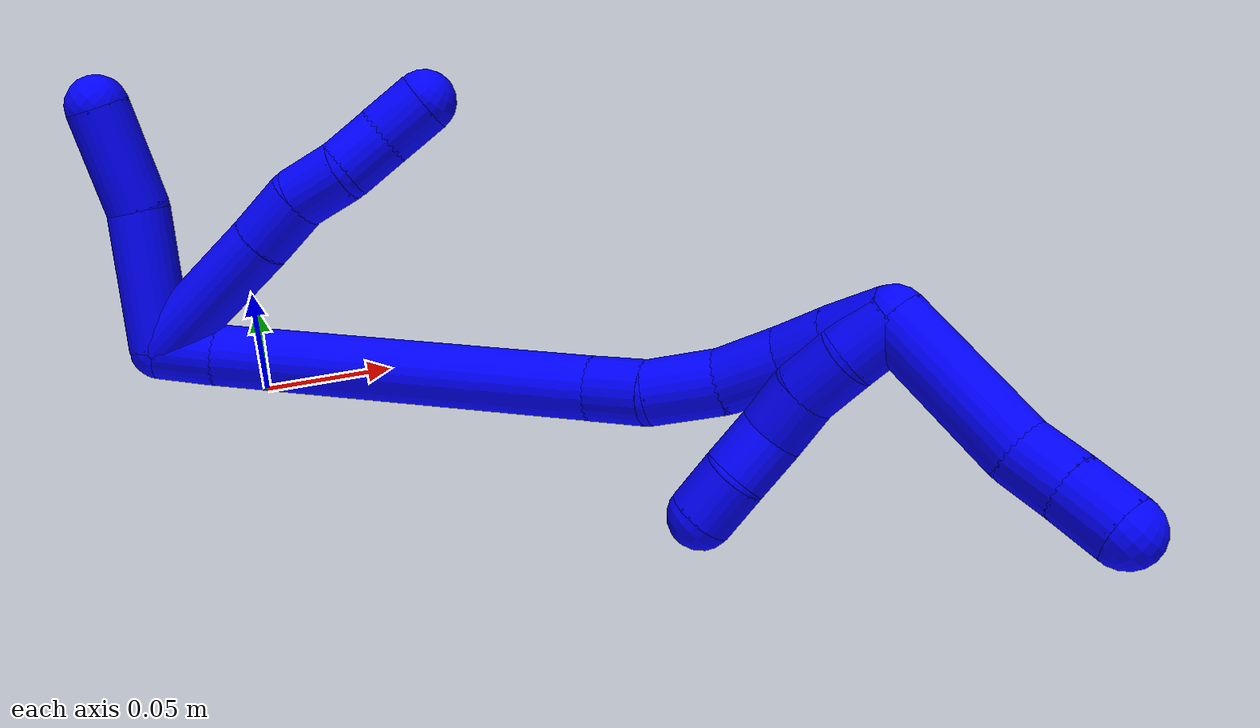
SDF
<sdf version="1.7">
 <world name="default">
  <model name="1">
   <static>0</static>
   <link name="1">
    <collision name="collision-cylinder-e_1_2_8">
     <pose>0.001427 0.000974 -0.031741 -3.11091 0.0449 -1.94286</pose>
     <geometry><cylinder><radius>0.0125</radius><length>0.063577</length></cylinder></geometry>
     <surface>
      <friction><ode><mu>1.16</mu><mu2>1.16</mu2><slip1>0</slip1><slip2>0</slip2></ode></friction>
      <contact><ode><kp>1e+06</kp><kd>1</kd><max_vel>0</max_vel><min_depth>0.001</min_depth></ode></contact>
     </surface>
    </collision>
    <visual name="visual-cylinder-e_1_2_8">
     <pose>0.001427 0.000974 -0.031741 -3.11091 0.0449 -1.94286</pose>
     <geometry><cylinder><radius>0.0125</radius><length>0.063577</length></cylinder></geometry>
     <material><ambient>0 0 1 1</ambient></material>
    </visual>
    <collision name="collision-cylinder-e_2_8_9">
     <pose>0.002942 0.002172 -0.075302 -3.12266 0.007431 -0.747946</pose>
     <geometry><cylinder><radius>0.0125</radius><length>0.023643</length></cylinder></geometry>
     <surface>
      <friction><ode><mu>1.16</mu><mu2>1.16</mu2><slip1>0</slip1><slip2>0</slip2></ode></friction>
      <contact><ode><kp>1e+06</kp><kd>1</kd><max_vel>0</max_vel><min_depth>0.001</min_depth></ode></contact>
     </surface>
    </collision>
    <visual name="visual-cylinder-e_2_8_9">
     <pose>0.002942 0.002172 -0.075302 -3.12266 0.007431 -0.747946</pose>
     <geometry><cylinder><radius>0.0125</radius><length>0.023643</length></cylinder></geometry>
     <material><ambient>0 0 1 1</ambient></material>
    </visual>
    <collision name="collision-cylinder-e_3_9_10">
     <pose>0.006066 0.003208 -0.097578 -3.06405 0.281782 -2.60768</pose>
     <geometry><cylinder><radius>0.0125</radius><length>0.021839</length></cylinder></geometry>
     <surface>
      <friction><ode><mu>1.16</mu><mu2>1.16</mu2><slip1>0</slip1><slip2>0</slip2></ode></friction>
      <contact><ode><kp>1e+06</kp><kd>1</kd><max_vel>0</max_vel><min_depth>0.001</min_depth></ode></contact>
     </surface>
    </collision>
    <visual name="visual-cylinder-e_3_9_10">
     <pose>0.006066 0.003208 -0.097578 -3.06405 0.281782 -2.60768</pose>
     <geometry><cylinder><radius>0.0125</radius><length>0.021839</length></cylinder></geometry>
     <material><ambient>0 0 1 1</ambient></material>
    </visual>
    <collision name="collision-cylinder-e_4_10_11">
     <pose>0.010911 0.001499 -0.117696 2.88629 0.179239 1.22162</pose>
     <geometry><cylinder><radius>0.0125</radius><length>0.020294</length></cylinder></geometry>
     <surface>
      <friction><ode><mu>1.16</mu><mu2>1.16</mu2><slip1>0</slip1><slip2>0</slip2></ode></friction>
      <contact><ode><kp>1e+06</kp><kd>1</kd><max_vel>0</max_vel><min_depth>0.001</min_depth></ode></contact>
     </surface>
    </collision>
    <visual name="visual-cylinder-e_4_10_11">
     <pose>0.010911 0.001499 -0.117696 2.88629 0.179239 1.22162</pose>
     <geometry><cylinder><radius>0.0125</radius><length>0.020294</length></cylinder></geometry>
     <material><ambient>0 0 1 1</ambient></material>
    </visual>
    <collision name="collision-cylinder-e_5_11_6">
     <pose>0.014457 -0.002235 -0.137461 3.02207 0.16908 1.91207</pose>
     <geometry><cylinder><radius>0.0125</radius><length>0.020648</length></cylinder></geometry>
     <surface>
      <friction><ode><mu>1.16</mu><mu2>1.16</mu2><slip1>0</slip1><slip2>0</slip2></ode></friction>
      <contact><ode><kp>1e+06</kp><kd>1</kd><max_vel>0</max_vel><min_depth>0.001</min_depth></ode></contact>
     </surface>
    </collision>
    <visual name="visual-cylinder-e_5_11_6">
     <pose>0.014457 -0.002235 -0.137461 3.02207 0.16908 1.91207</pose>
     <geometry><cylinder><radius>0.0125</radius><length>0.020648</length></cylinder></geometry>
     <material><ambient>0 0 1 1</ambient></material>
    </visual>
    <collision name="collision-cylinder-e_1_2_12">
     <pose>-0.020708 -0.005843 -0.018624 2.83759 -0.814935 -2.45954</pose>
     <geometry><cylinder><radius>0.0125</radius><length>0.056915</length></cylinder></geometry>
     <surface>
      <friction><ode><mu>1.16</mu><mu2>1.16</mu2><slip1>0</slip1><slip2>0</slip2></ode></friction>
      <contact><ode><kp>1e+06</kp><kd>1</kd><max_vel>0</max_vel><min_depth>0.001</min_depth></ode></contact>
     </surface>
    </collision>
    <visual name="visual-cylinder-e_1_2_12">
     <pose>-0.020708 -0.005843 -0.018624 2.83759 -0.814935 -2.45954</pose>
     <geometry><cylinder><radius>0.0125</radius><length>0.056915</length></cylinder></geometry>
     <material><ambient>0 0 1 1</ambient></material>
    </visual>
    <collision name="collision-cylinder-e_2_12_5">
     <pose>-0.059781 -0.013565 -0.048352 2.97396 -1.02075 -2.84368</pose>
     <geometry><cylinder><radius>0.0125</radius><length>0.043085</length></cylinder></geometry>
     <surface>
      <friction><ode><mu>1.16</mu><mu2>1.16</mu2><slip1>0</slip1><slip2>0</slip2></ode></friction>
      <contact><ode><kp>1e+06</kp><kd>1</kd><max_vel>0</max_vel><min_depth>0.001</min_depth></ode></contact>
     </surface>
    </collision>
    <visual name="visual-cylinder-e_2_12_5">
     <pose>-0.059781 -0.013565 -0.048352 2.97396 -1.02075 -2.84368</pose>
     <geometry><cylinder><radius>0.0125</radius><length>0.043085</length></cylinder></geometry>
     <material><ambient>0 0 1 1</ambient></material>
    </visual>
    <collision name="collision-cylinder-e_1_2_13">
     <pose>0.00984 0.001225 -0.007096 -2.97063 0.939018 -2.80696</pose>
     <geometry><cylinder><radius>0.0125</radius><length>0.024386</length></cylinder></geometry>
     <surface>
      <friction><ode><mu>1.16</mu><mu2>1.16</mu2><slip1>0</slip1><slip2>0</slip2></ode></friction>
      <contact><ode><kp>1e+06</kp><kd>1</kd><max_vel>0</max_vel><min_depth>0.001</min_depth></ode></contact>
     </surface>
    </collision>
    <visual name="visual-cylinder-e_1_2_13">
     <pose>0.00984 0.001225 -0.007096 -2.97063 0.939018 -2.80696</pose>
     <geometry><cylinder><radius>0.0125</radius><length>0.024386</length></cylinder></geometry>
     <material><ambient>0 0 1 1</ambient></material>
    </visual>
    <collision name="collision-cylinder-e_2_13_14">
     <pose>0.075188 0.022142 -0.0639 -2.76441 0.804135 -2.29781</pose>
     <geometry><cylinder><radius>0.0125</radius><length>0.154141</length></cylinder></geometry>
     <surface>
      <friction><ode><mu>1.16</mu><mu2>1.16</mu2><slip1>0</slip1><slip2>0</slip2></ode></friction>
      <contact><ode><kp>1e+06</kp><kd>1</kd><max_vel>0</max_vel><min_depth>0.001</min_depth></ode></contact>
     </surface>
    </collision>
    <visual name="visual-cylinder-e_2_13_14">
     <pose>0.075188 0.022142 -0.0639 -2.76441 0.804135 -2.29781</pose>
     <geometry><cylinder><radius>0.0125</radius><length>0.154141</length></cylinder></geometry>
     <material><ambient>0 0 1 1</ambient></material>
    </visual>
    <collision name="collision-cylinder-e_3_14_15">
     <pose>0.137251 0.047887 -0.121575 -2.49192 0.579987 -1.45015</pose>
     <geometry><cylinder><radius>0.0125</radius><length>0.023923</length></cylinder></geometry>
     <surface>
      <friction><ode><mu>1.16</mu><mu2>1.16</mu2><slip1>0</slip1><slip2>0</slip2></ode></friction>
      <contact><ode><kp>1e+06</kp><kd>1</kd><max_vel>0</max_vel><min_depth>0.001</min_depth></ode></contact>
     </surface>
    </collision>
    <visual name="visual-cylinder-e_3_14_15">
     <pose>0.137251 0.047887 -0.121575 -2.49192 0.579987 -1.45015</pose>
     <geometry><cylinder><radius>0.0125</radius><length>0.023923</length></cylinder></geometry>
     <material><ambient>0 0 1 1</ambient></material>
    </visual>
    <collision name="collision-cylinder-e_4_15_16">
     <pose>0.15118 0.057794 -0.141214 -2.82259 0.540336 -2.08911</pose>
     <geometry><cylinder><radius>0.0125</radius><length>0.028668</length></cylinder></geometry>
     <surface>
      <friction><ode><mu>1.16</mu><mu2>1.16</mu2><slip1>0</slip1><slip2>0</slip2></ode></friction>
      <contact><ode><kp>1e+06</kp><kd>1</kd><max_vel>0</max_vel><min_depth>0.001</min_depth></ode></contact>
     </surface>
    </collision>
    <visual name="visual-cylinder-e_4_15_16">
     <pose>0.15118 0.057794 -0.141214 -2.82259 0.540336 -2.08911</pose>
     <geometry><cylinder><radius>0.0125</radius><length>0.028668</length></cylinder></geometry>
     <material><ambient>0 0 1 1</ambient></material>
    </visual>
    <collision name="collision-cylinder-e_5_16_17">
     <pose>0.162441 0.065756 -0.164524 -2.80239 0.305108 -1.46323</pose>
     <geometry><cylinder><radius>0.0125</radius><length>0.025878</length></cylinder></geometry>
     <surface>
      <friction><ode><mu>1.16</mu><mu2>1.16</mu2><slip1>0</slip1><slip2>0</slip2></ode></friction>
      <contact><ode><kp>1e+06</kp><kd>1</kd><max_vel>0</max_vel><min_depth>0.001</min_depth></ode></contact>
     </surface>
    </collision>
    <visual name="visual-cylinder-e_5_16_17">
     <pose>0.162441 0.065756 -0.164524 -2.80239 0.305108 -1.46323</pose>
     <geometry><cylinder><radius>0.0125</radius><length>0.025878</length></cylinder></geometry>
     <material><ambient>0 0 1 1</ambient></material>
    </visual>
    <collision name="collision-cylinder-e_6_17_18">
     <pose>0.168426 0.073985 -0.18507 -2.70809 0.210668 -0.895212</pose>
     <geometry><cylinder><radius>0.0125</radius><length>0.020075</length></cylinder></geometry>
     <surface>
      <friction><ode><mu>1.16</mu><mu2>1.16</mu2><slip1>0</slip1><slip2>0</slip2></ode></friction>
      <contact><ode><kp>1e+06</kp><kd>1</kd><max_vel>0</max_vel><min_depth>0.001</min_depth></ode></contact>
     </surface>
    </collision>
    <visual name="visual-cylinder-e_6_17_18">
     <pose>0.168426 0.073985 -0.18507 -2.70809 0.210668 -0.895212</pose>
     <geometry><cylinder><radius>0.0125</radius><length>0.020075</length></cylinder></geometry>
     <material><ambient>0 0 1 1</ambient></material>
    </visual>
    <collision name="collision-cylinder-e_7_18_1">
     <pose>0.172962 0.083661 -0.203707 -2.62302 0.214142 -0.769953</pose>
     <geometry><cylinder><radius>0.0125</radius><length>0.022929</length></cylinder></geometry>
     <surface>
      <friction><ode><mu>1.16</mu><mu2>1.16</mu2><slip1>0</slip1><slip2>0</slip2></ode></friction>
      <contact><ode><kp>1e+06</kp><kd>1</kd><max_vel>0</max_vel><min_depth>0.001</min_depth></ode></contact>
     </surface>
    </collision>
    <visual name="visual-cylinder-e_7_18_1">
     <pose>0.172962 0.083661 -0.203707 -2.62302 0.214142 -0.769953</pose>
     <geometry><cylinder><radius>0.0125</radius><length>0.022929</length></cylinder></geometry>
     <material><ambient>0 0 1 1</ambient></material>
    </visual>
    <collision name="collision-cylinder-e_1_1_19">
     <pose>0.198956 0.107031 -0.212958 -1.54392 0.92309 -0.901825</pose>
     <geometry><cylinder><radius>0.0125</radius><length>0.059081</length></cylinder></geometry>
     <surface>
      <friction><ode><mu>1.16</mu><mu2>1.16</mu2><slip1>0</slip1><slip2>0</slip2></ode></friction>
      <contact><ode><kp>1e+06</kp><kd>1</kd><max_vel>0</max_vel><min_depth>0.001</min_depth></ode></contact>
     </surface>
    </collision>
    <visual name="visual-cylinder-e_1_1_19">
     <pose>0.198956 0.107031 -0.212958 -1.54392 0.92309 -0.901825</pose>
     <geometry><cylinder><radius>0.0125</radius><length>0.059081</length></cylinder></geometry>
     <material><ambient>0 0 1 1</ambient></material>
    </visual>
    <collision name="collision-cylinder-e_2_19_20">
     <pose>0.22921 0.132067 -0.21425 -1.81131 0.733275 -0.910522</pose>
     <geometry><cylinder><radius>0.0125</radius><length>0.02001</length></cylinder></geometry>
     <surface>
      <friction><ode><mu>1.16</mu><mu2>1.16</mu2><slip1>0</slip1><slip2>0</slip2></ode></friction>
      <contact><ode><kp>1e+06</kp><kd>1</kd><max_vel>0</max_vel><min_depth>0.001</min_depth></ode></contact>
     </surface>
    </collision>
    <visual name="visual-cylinder-e_2_19_20">
     <pose>0.22921 0.132067 -0.21425 -1.81131 0.733275 -0.910522</pose>
     <geometry><cylinder><radius>0.0125</radius><length>0.02001</length></cylinder></geometry>
     <material><ambient>0 0 1 1</ambient></material>
    </visual>
    <collision name="collision-cylinder-e_3_20_4">
     <pose>0.24264 0.147133 -0.217565 -1.76513 0.699866 -0.835348</pose>
     <geometry><cylinder><radius>0.0125</radius><length>0.020908</length></cylinder></geometry>
     <surface>
      <friction><ode><mu>1.16</mu><mu2>1.16</mu2><slip1>0</slip1><slip2>0</slip2></ode></friction>
      <contact><ode><kp>1e+06</kp><kd>1</kd><max_vel>0</max_vel><min_depth>0.001</min_depth></ode></contact>
     </surface>
    </collision>
    <visual name="visual-cylinder-e_3_20_4">
     <pose>0.24264 0.147133 -0.217565 -1.76513 0.699866 -0.835348</pose>
     <geometry><cylinder><radius>0.0125</radius><length>0.020908</length></cylinder></geometry>
     <material><ambient>0 0 1 1</ambient></material>
    </visual>
    <collision name="collision-cylinder-e_1_1_21">
     <pose>0.174397 0.088757 -0.203498 0.045911 -0.100283 -0.002304</pose>
     <geometry><cylinder><radius>0.0125</radius><length>0.02</length></cylinder></geometry>
     <surface>
      <friction><ode><mu>1.16</mu><mu2>1.16</mu2><slip1>0</slip1><slip2>0</slip2></ode></friction>
      <contact><ode><kp>1e+06</kp><kd>1</kd><max_vel>0</max_vel><min_depth>0.001</min_depth></ode></contact>
     </surface>
    </collision>
    <visual name="visual-cylinder-e_1_1_21">
     <pose>0.174397 0.088757 -0.203498 0.045911 -0.100283 -0.002304</pose>
     <geometry><cylinder><radius>0.0125</radius><length>0.02</length></cylinder></geometry>
     <material><ambient>0 0 1 1</ambient></material>
    </visual>
    <collision name="collision-cylinder-e_2_21_22">
     <pose>0.173512 0.086135 -0.183796 0.218255 0.011586 0.001269</pose>
     <geometry><cylinder><radius>0.0125</radius><length>0.02</length></cylinder></geometry>
     <surface>
      <friction><ode><mu>1.16</mu><mu2>1.16</mu2><slip1>0</slip1><slip2>0</slip2></ode></friction>
      <contact><ode><kp>1e+06</kp><kd>1</kd><max_vel>0</max_vel><min_depth>0.001</min_depth></ode></contact>
     </surface>
    </collision>
    <visual name="visual-cylinder-e_2_21_22">
     <pose>0.173512 0.086135 -0.183796 0.218255 0.011586 0.001269</pose>
     <geometry><cylinder><radius>0.0125</radius><length>0.02</length></cylinder></geometry>
     <material><ambient>0 0 1 1</ambient></material>
    </visual>
    <collision name="collision-cylinder-e_3_22_23">
     <pose>0.17531 0.082977 -0.164227 0.100847 0.169059 0.008552</pose>
     <geometry><cylinder><radius>0.0125</radius><length>0.02</length></cylinder></geometry>
     <surface>
      <friction><ode><mu>1.16</mu><mu2>1.16</mu2><slip1>0</slip1><slip2>0</slip2></ode></friction>
      <contact><ode><kp>1e+06</kp><kd>1</kd><max_vel>0</max_vel><min_depth>0.001</min_depth></ode></contact>
     </surface>
    </collision>
    <visual name="visual-cylinder-e_3_22_23">
     <pose>0.17531 0.082977 -0.164227 0.100847 0.169059 0.008552</pose>
     <geometry><cylinder><radius>0.0125</radius><length>0.02</length></cylinder></geometry>
     <material><ambient>0 0 1 1</ambient></material>
    </visual>
    <collision name="collision-cylinder-e_4_23_24">
     <pose>0.177092 0.083687 -0.144566 -0.171055 0.009997 -0.000857</pose>
     <geometry><cylinder><radius>0.0125</radius><length>0.02</length></cylinder></geometry>
     <surface>
      <friction><ode><mu>1.16</mu><mu2>1.16</mu2><slip1>0</slip1><slip2>0</slip2></ode></friction>
      <contact><ode><kp>1e+06</kp><kd>1</kd><max_vel>0</max_vel><min_depth>0.001</min_depth></ode></contact>
     </surface>
    </collision>
    <visual name="visual-cylinder-e_4_23_24">
     <pose>0.177092 0.083687 -0.144566 -0.171055 0.009997 -0.000857</pose>
     <geometry><cylinder><radius>0.0125</radius><length>0.02</length></cylinder></geometry>
     <material><ambient>0 0 1 1</ambient></material>
    </visual>
    <collision name="collision-cylinder-e_5_24_3">
     <pose>0.178225 0.085359 -0.124766 0.003013 0.103424 0.000156</pose>
     <geometry><cylinder><radius>0.0125</radius><length>0.02</length></cylinder></geometry>
     <surface>
      <friction><ode><mu>1.16</mu><mu2>1.16</mu2><slip1>0</slip1><slip2>0</slip2></ode></friction>
      <contact><ode><kp>1e+06</kp><kd>1</kd><max_vel>0</max_vel><min_depth>0.001</min_depth></ode></contact>
     </surface>
    </collision>
    <visual name="visual-cylinder-e_5_24_3">
     <pose>0.178225 0.085359 -0.124766 0.003013 0.103424 0.000156</pose>
     <geometry><cylinder><radius>0.0125</radius><length>0.02</length></cylinder></geometry>
     <material><ambient>0 0 1 1</ambient></material>
    </visual>
    <collision name="collision-sphere-3">
     <pose>0.179257 0.085329 -0.114819 0 -0 0</pose>
     <geometry><sphere><radius>0.0125</radius></sphere></geometry>
     <surface>
      <friction><ode><mu>1.16</mu><mu2>1.16</mu2><slip1>0</slip1><slip2>0</slip2></ode></friction>
      <contact><ode><kp>1e+06</kp><kd>1</kd><max_vel>0</max_vel><min_depth>0.001</min_depth></ode></contact>
     </surface>
    </collision>
    <visual name="visual-sphere-3">
     <pose>0.179257 0.085329 -0.114819 0 -0 0</pose>
     <geometry><sphere><radius>0.0125</radius></sphere></geometry>
     <material><ambient>0 0 1 1</ambient></material>
    </visual>
    <collision name="collision-sphere-24">
     <pose>0.177192 0.085389 -0.134712 0 -0 0</pose>
     <geometry><sphere><radius>0.0125</radius></sphere></geometry>
     <surface>
      <friction><ode><mu>1.16</mu><mu2>1.16</mu2><slip1>0</slip1><slip2>0</slip2></ode></friction>
      <contact><ode><kp>1e+06</kp><kd>1</kd><max_vel>0</max_vel><min_depth>0.001</min_depth></ode></contact>
     </surface>
    </collision>
    <visual name="visual-sphere-24">
     <pose>0.177192 0.085389 -0.134712 0 -0 0</pose>
     <geometry><sphere><radius>0.0125</radius></sphere></geometry>
     <material><ambient>0 0 1 1</ambient></material>
    </visual>
    <collision name="collision-sphere-23">
     <pose>0.176993 0.081985 -0.154419 0 -0 0</pose>
     <geometry><sphere><radius>0.0125</radius></sphere></geometry>
     <surface>
      <friction><ode><mu>1.16</mu><mu2>1.16</mu2><slip1>0</slip1><slip2>0</slip2></ode></friction>
      <contact><ode><kp>1e+06</kp><kd>1</kd><max_vel>0</max_vel><min_depth>0.001</min_depth></ode></contact>
     </surface>
    </collision>
    <visual name="visual-sphere-23">
     <pose>0.176993 0.081985 -0.154419 0 -0 0</pose>
     <geometry><sphere><radius>0.0125</radius></sphere></geometry>
     <material><ambient>0 0 1 1</ambient></material>
    </visual>
    <collision name="collision-sphere-22">
     <pose>0.173627 0.08397 -0.174034 0 -0 0</pose>
     <geometry><sphere><radius>0.0125</radius></sphere></geometry>
     <surface>
      <friction><ode><mu>1.16</mu><mu2>1.16</mu2><slip1>0</slip1><slip2>0</slip2></ode></friction>
      <contact><ode><kp>1e+06</kp><kd>1</kd><max_vel>0</max_vel><min_depth>0.001</min_depth></ode></contact>
     </surface>
    </collision>
    <visual name="visual-sphere-22">
     <pose>0.173627 0.08397 -0.174034 0 -0 0</pose>
     <geometry><sphere><radius>0.0125</radius></sphere></geometry>
     <material><ambient>0 0 1 1</ambient></material>
    </visual>
    <collision name="collision-sphere-21">
     <pose>0.173396 0.0883 -0.193558 0 -0 0</pose>
     <geometry><sphere><radius>0.0125</radius></sphere></geometry>
     <surface>
      <friction><ode><mu>1.16</mu><mu2>1.16</mu2><slip1>0</slip1><slip2>0</slip2></ode></friction>
      <contact><ode><kp>1e+06</kp><kd>1</kd><max_vel>0</max_vel><min_depth>0.001</min_depth></ode></contact>
     </surface>
    </collision>
    <visual name="visual-sphere-21">
     <pose>0.173396 0.0883 -0.193558 0 -0 0</pose>
     <geometry><sphere><radius>0.0125</radius></sphere></geometry>
     <material><ambient>0 0 1 1</ambient></material>
    </visual>
    <collision name="collision-sphere-4">
     <pose>0.249374 0.15498 -0.219109 0 -0 0</pose>
     <geometry><sphere><radius>0.0125</radius></sphere></geometry>
     <surface>
      <friction><ode><mu>1.16</mu><mu2>1.16</mu2><slip1>0</slip1><slip2>0</slip2></ode></friction>
      <contact><ode><kp>1e+06</kp><kd>1</kd><max_vel>0</max_vel><min_depth>0.001</min_depth></ode></contact>
     </surface>
    </collision>
    <visual name="visual-sphere-4">
     <pose>0.249374 0.15498 -0.219109 0 -0 0</pose>
     <geometry><sphere><radius>0.0125</radius></sphere></geometry>
     <material><ambient>0 0 1 1</ambient></material>
    </visual>
    <collision name="collision-sphere-20">
     <pose>0.235907 0.139287 -0.21602 0 -0 0</pose>
     <geometry><sphere><radius>0.0125</radius></sphere></geometry>
     <surface>
      <friction><ode><mu>1.16</mu><mu2>1.16</mu2><slip1>0</slip1><slip2>0</slip2></ode></friction>
      <contact><ode><kp>1e+06</kp><kd>1</kd><max_vel>0</max_vel><min_depth>0.001</min_depth></ode></contact>
     </surface>
    </collision>
    <visual name="visual-sphere-20">
     <pose>0.235907 0.139287 -0.21602 0 -0 0</pose>
     <geometry><sphere><radius>0.0125</radius></sphere></geometry>
     <material><ambient>0 0 1 1</ambient></material>
    </visual>
    <collision name="collision-sphere-6">
     <pose>0.016195 -0.003449 -0.147565 0 -0 0</pose>
     <geometry><sphere><radius>0.0125</radius></sphere></geometry>
     <surface>
      <friction><ode><mu>1.16</mu><mu2>1.16</mu2><slip1>0</slip1><slip2>0</slip2></ode></friction>
      <contact><ode><kp>1e+06</kp><kd>1</kd><max_vel>0</max_vel><min_depth>0.001</min_depth></ode></contact>
     </surface>
    </collision>
    <visual name="visual-sphere-6">
     <pose>0.016195 -0.003449 -0.147565 0 -0 0</pose>
     <geometry><sphere><radius>0.0125</radius></sphere></geometry>
     <material><ambient>0 0 1 1</ambient></material>
    </visual>
    <collision name="collision-sphere-11">
     <pose>0.01272 -0.001022 -0.127357 0 -0 0</pose>
     <geometry><sphere><radius>0.0125</radius></sphere></geometry>
     <surface>
      <friction><ode><mu>1.16</mu><mu2>1.16</mu2><slip1>0</slip1><slip2>0</slip2></ode></friction>
      <contact><ode><kp>1e+06</kp><kd>1</kd><max_vel>0</max_vel><min_depth>0.001</min_depth></ode></contact>
     </surface>
    </collision>
    <visual name="visual-sphere-11">
     <pose>0.01272 -0.001022 -0.127357 0 -0 0</pose>
     <geometry><sphere><radius>0.0125</radius></sphere></geometry>
     <material><ambient>0 0 1 1</ambient></material>
    </visual>
    <collision name="collision-sphere-10">
     <pose>0.009102 0.004021 -0.108035 0 -0 0</pose>
     <geometry><sphere><radius>0.0125</radius></sphere></geometry>
     <surface>
      <friction><ode><mu>1.16</mu><mu2>1.16</mu2><slip1>0</slip1><slip2>0</slip2></ode></friction>
      <contact><ode><kp>1e+06</kp><kd>1</kd><max_vel>0</max_vel><min_depth>0.001</min_depth></ode></contact>
     </surface>
    </collision>
    <visual name="visual-sphere-10">
     <pose>0.009102 0.004021 -0.108035 0 -0 0</pose>
     <geometry><sphere><radius>0.0125</radius></sphere></geometry>
     <material><ambient>0 0 1 1</ambient></material>
    </visual>
    <collision name="collision-sphere-9">
     <pose>0.003029 0.002396 -0.08712 0 -0 0</pose>
     <geometry><sphere><radius>0.0125</radius></sphere></geometry>
     <surface>
      <friction><ode><mu>1.16</mu><mu2>1.16</mu2><slip1>0</slip1><slip2>0</slip2></ode></friction>
      <contact><ode><kp>1e+06</kp><kd>1</kd><max_vel>0</max_vel><min_depth>0.001</min_depth></ode></contact>
     </surface>
    </collision>
    <visual name="visual-sphere-9">
     <pose>0.003029 0.002396 -0.08712 0 -0 0</pose>
     <geometry><sphere><radius>0.0125</radius></sphere></geometry>
     <material><ambient>0 0 1 1</ambient></material>
    </visual>
    <collision name="collision-sphere-2">
     <geometry><sphere><radius>0.0125</radius></sphere></geometry>
     <surface>
      <friction><ode><mu>1.16</mu><mu2>1.16</mu2><slip1>0</slip1><slip2>0</slip2></ode></friction>
      <contact><ode><kp>1e+06</kp><kd>1</kd><max_vel>0</max_vel><min_depth>0.001</min_depth></ode></contact>
     </surface>
    </collision>
    <visual name="visual-sphere-2">
     <geometry><sphere><radius>0.0125</radius></sphere></geometry>
     <material><ambient>0 0 1 1</ambient></material>
    </visual>
    <collision name="collision-sphere-19">
     <pose>0.222513 0.124848 -0.212479 0 -0 0</pose>
     <geometry><sphere><radius>0.0125</radius></sphere></geometry>
     <surface>
      <friction><ode><mu>1.16</mu><mu2>1.16</mu2><slip1>0</slip1><slip2>0</slip2></ode></friction>
      <contact><ode><kp>1e+06</kp><kd>1</kd><max_vel>0</max_vel><min_depth>0.001</min_depth></ode></contact>
     </surface>
    </collision>
    <visual name="visual-sphere-19">
     <pose>0.222513 0.124848 -0.212479 0 -0 0</pose>
     <geometry><sphere><radius>0.0125</radius></sphere></geometry>
     <material><ambient>0 0 1 1</ambient></material>
    </visual>
    <collision name="collision-sphere-8">
     <pose>0.002854 0.001948 -0.063483 0 -0 0</pose>
     <geometry><sphere><radius>0.0125</radius></sphere></geometry>
     <surface>
      <friction><ode><mu>1.16</mu><mu2>1.16</mu2><slip1>0</slip1><slip2>0</slip2></ode></friction>
      <contact><ode><kp>1e+06</kp><kd>1</kd><max_vel>0</max_vel><min_depth>0.001</min_depth></ode></contact>
     </surface>
    </collision>
    <visual name="visual-sphere-8">
     <pose>0.002854 0.001948 -0.063483 0 -0 0</pose>
     <geometry><sphere><radius>0.0125</radius></sphere></geometry>
     <material><ambient>0 0 1 1</ambient></material>
    </visual>
    <collision name="collision-sphere-12">
     <pose>-0.041416 -0.011686 -0.037249 0 -0 0</pose>
     <geometry><sphere><radius>0.0125</radius></sphere></geometry>
     <surface>
      <friction><ode><mu>1.16</mu><mu2>1.16</mu2><slip1>0</slip1><slip2>0</slip2></ode></friction>
      <contact><ode><kp>1e+06</kp><kd>1</kd><max_vel>0</max_vel><min_depth>0.001</min_depth></ode></contact>
     </surface>
    </collision>
    <visual name="visual-sphere-12">
     <pose>-0.041416 -0.011686 -0.037249 0 -0 0</pose>
     <geometry><sphere><radius>0.0125</radius></sphere></geometry>
     <material><ambient>0 0 1 1</ambient></material>
    </visual>
    <collision name="collision-sphere-5">
     <pose>-0.078146 -0.015444 -0.059455 0 -0 0</pose>
     <geometry><sphere><radius>0.0125</radius></sphere></geometry>
     <surface>
      <friction><ode><mu>1.16</mu><mu2>1.16</mu2><slip1>0</slip1><slip2>0</slip2></ode></friction>
      <contact><ode><kp>1e+06</kp><kd>1</kd><max_vel>0</max_vel><min_depth>0.001</min_depth></ode></contact>
     </surface>
    </collision>
    <visual name="visual-sphere-5">
     <pose>-0.078146 -0.015444 -0.059455 0 -0 0</pose>
     <geometry><sphere><radius>0.0125</radius></sphere></geometry>
     <material><ambient>0 0 1 1</ambient></material>
    </visual>
    <collision name="collision-sphere-13">
     <pose>0.019679 0.00245 -0.014192 0 -0 0</pose>
     <geometry><sphere><radius>0.0125</radius></sphere></geometry>
     <surface>
      <friction><ode><mu>1.16</mu><mu2>1.16</mu2><slip1>0</slip1><slip2>0</slip2></ode></friction>
      <contact><ode><kp>1e+06</kp><kd>1</kd><max_vel>0</max_vel><min_depth>0.001</min_depth></ode></contact>
     </surface>
    </collision>
    <visual name="visual-sphere-13">
     <pose>0.019679 0.00245 -0.014192 0 -0 0</pose>
     <geometry><sphere><radius>0.0125</radius></sphere></geometry>
     <material><ambient>0 0 1 1</ambient></material>
    </visual>
    <collision name="collision-sphere-14">
     <pose>0.130696 0.041834 -0.113608 0 -0 0</pose>
     <geometry><sphere><radius>0.0125</radius></sphere></geometry>
     <surface>
      <friction><ode><mu>1.16</mu><mu2>1.16</mu2><slip1>0</slip1><slip2>0</slip2></ode></friction>
      <contact><ode><kp>1e+06</kp><kd>1</kd><max_vel>0</max_vel><min_depth>0.001</min_depth></ode></contact>
     </surface>
    </collision>
    <visual name="visual-sphere-14">
     <pose>0.130696 0.041834 -0.113608 0 -0 0</pose>
     <geometry><sphere><radius>0.0125</radius></sphere></geometry>
     <material><ambient>0 0 1 1</ambient></material>
    </visual>
    <collision name="collision-sphere-15">
     <pose>0.143806 0.05394 -0.129542 0 -0 0</pose>
     <geometry><sphere><radius>0.0125</radius></sphere></geometry>
     <surface>
      <friction><ode><mu>1.16</mu><mu2>1.16</mu2><slip1>0</slip1><slip2>0</slip2></ode></friction>
      <contact><ode><kp>1e+06</kp><kd>1</kd><max_vel>0</max_vel><min_depth>0.001</min_depth></ode></contact>
     </surface>
    </collision>
    <visual name="visual-sphere-15">
     <pose>0.143806 0.05394 -0.129542 0 -0 0</pose>
     <geometry><sphere><radius>0.0125</radius></sphere></geometry>
     <material><ambient>0 0 1 1</ambient></material>
    </visual>
    <collision name="collision-sphere-16">
     <pose>0.158554 0.061649 -0.152886 0 -0 0</pose>
     <geometry><sphere><radius>0.0125</radius></sphere></geometry>
     <surface>
      <friction><ode><mu>1.16</mu><mu2>1.16</mu2><slip1>0</slip1><slip2>0</slip2></ode></friction>
      <contact><ode><kp>1e+06</kp><kd>1</kd><max_vel>0</max_vel><min_depth>0.001</min_depth></ode></contact>
     </surface>
    </collision>
    <visual name="visual-sphere-16">
     <pose>0.158554 0.061649 -0.152886 0 -0 0</pose>
     <geometry><sphere><radius>0.0125</radius></sphere></geometry>
     <material><ambient>0 0 1 1</ambient></material>
    </visual>
    <collision name="collision-sphere-17">
     <pose>0.166327 0.069862 -0.176162 0 -0 0</pose>
     <geometry><sphere><radius>0.0125</radius></sphere></geometry>
     <surface>
      <friction><ode><mu>1.16</mu><mu2>1.16</mu2><slip1>0</slip1><slip2>0</slip2></ode></friction>
      <contact><ode><kp>1e+06</kp><kd>1</kd><max_vel>0</max_vel><min_depth>0.001</min_depth></ode></contact>
     </surface>
    </collision>
    <visual name="visual-sphere-17">
     <pose>0.166327 0.069862 -0.176162 0 -0 0</pose>
     <geometry><sphere><radius>0.0125</radius></sphere></geometry>
     <material><ambient>0 0 1 1</ambient></material>
    </visual>
    <collision name="collision-sphere-18">
     <pose>0.170525 0.078108 -0.193978 0 -0 0</pose>
     <geometry><sphere><radius>0.0125</radius></sphere></geometry>
     <surface>
      <friction><ode><mu>1.16</mu><mu2>1.16</mu2><slip1>0</slip1><slip2>0</slip2></ode></friction>
      <contact><ode><kp>1e+06</kp><kd>1</kd><max_vel>0</max_vel><min_depth>0.001</min_depth></ode></contact>
     </surface>
    </collision>
    <visual name="visual-sphere-18">
     <pose>0.170525 0.078108 -0.193978 0 -0 0</pose>
     <geometry><sphere><radius>0.0125</radius></sphere></geometry>
     <material><ambient>0 0 1 1</ambient></material>
    </visual>
    <collision name="collision-sphere-1">
     <pose>0.175398 0.089213 -0.213437 0 -0 0</pose>
     <geometry><sphere><radius>0.0125</radius></sphere></geometry>
     <surface>
      <friction><ode><mu>1.16</mu><mu2>1.16</mu2><slip1>0</slip1><slip2>0</slip2></ode></friction>
      <contact><ode><kp>1e+06</kp><kd>1</kd><max_vel>0</max_vel><min_depth>0.001</min_depth></ode></contact>
     </surface>
    </collision>
    <visual name="visual-sphere-1">
     <pose>0.175398 0.089213 -0.213437 0 -0 0</pose>
     <geometry><sphere><radius>0.0125</radius></sphere></geometry>
     <material><ambient>0 0 1 1</ambient></material>
    </visual>
    <inertial>
     <pose>0.089388 0.041576 -0.10901 0 -0 0</pose>
     <mass>0.75</mass>
     <inertia>
      <ixx>-0.000347</ixx>
      <ixy>0</ixy>
      <ixz>0</ixz>
      <iyy>0.000108</iyy>
      <iyz>0</iyz>
      <izz>-0.000349</izz>
     </inertia>
    </inertial>
   </link>
   <pose>-0.039508 0.019486 0.014017 2.69036 0.676124 -0.519994</pose>
  </model>
 </world>
</sdf>
